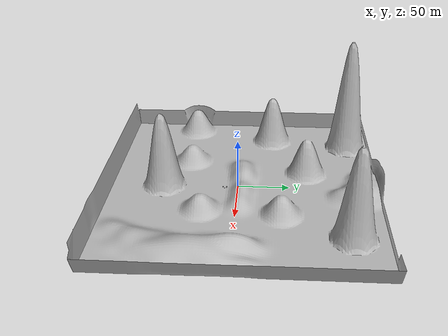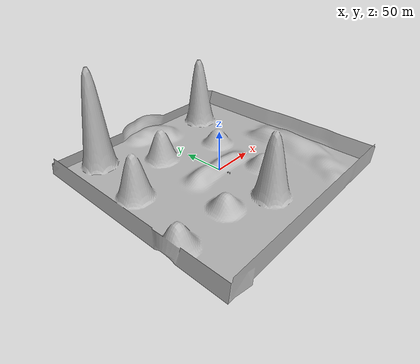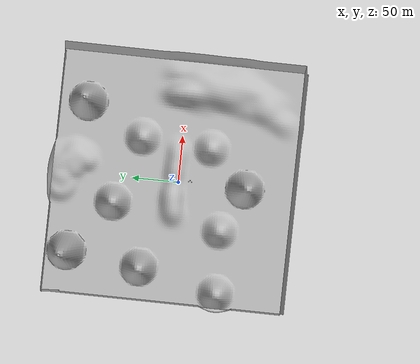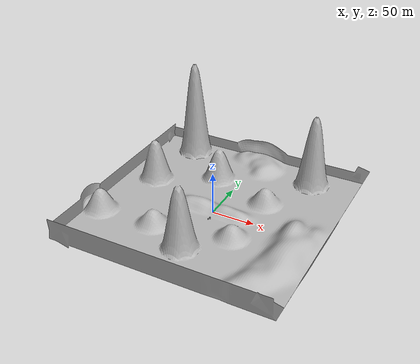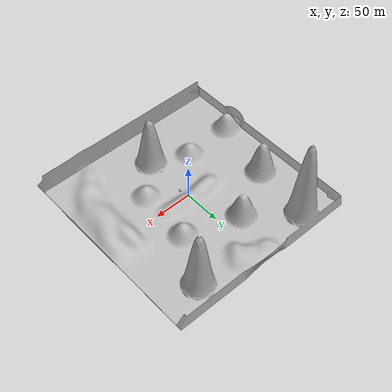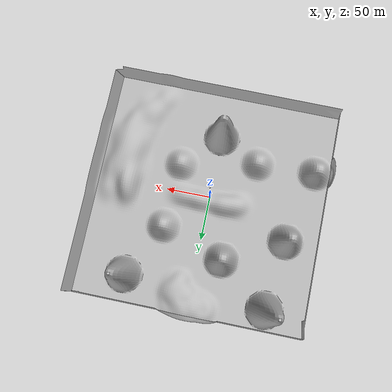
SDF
<sdf version='1.10'>
  <world name='empty'>
    <physics name='1ms' type='ignored'>
      <max_step_size>0.001</max_step_size>
      <real_time_factor>1</real_time_factor>
      <real_time_update_rate>1000</real_time_update_rate>
    </physics>
    <plugin name='gz::sim::systems::Physics' filename='gz-sim-physics-system'/>
    <plugin name='gz::sim::systems::UserCommands' filename='gz-sim-user-commands-system'/>
    <plugin name='gz::sim::systems::SceneBroadcaster' filename='gz-sim-scene-broadcaster-system'/>
    <scene>
      <grid>false</grid>
      <ambient>0.400000006 0.400000006 0.400000006 1</ambient>
      <background>0.699999988 0.699999988 0.699999988 1</background>
      <shadows>true</shadows>
    </scene>
    <gravity>0 0 -9.8000000000000007</gravity>
    <magnetic_field>5.5644999999999998e-06 2.2875799999999999e-05 -4.2388400000000002e-05</magnetic_field>
    <atmosphere type='adiabatic'/>
    <model name='WorldEnvirement'>
      <static>true</static>
      <pose>0 0 0 0 0 0</pose>
      <link name='link'>
        <collision name='collision'>
          <geometry>
            <mesh>
              <scale>20 20 20</scale>
              <uri>file:///home/ihackerubuntu/ProjectFiles/Practice/Practice_ROS2/ros2_ws_2/install/robot_depth_camera_sensor/share/robot_depth_camera_sensor/worlds/wld.dae</uri>
            </mesh>
          </geometry>
        </collision>
        <visual name='visual'>
          <geometry>
            <mesh>
              <scale>20 20 20</scale>
              <uri>file:///home/ihackerubuntu/ProjectFiles/Practice/Practice_ROS2/ros2_ws_2/install/robot_depth_camera_sensor/share/robot_depth_camera_sensor/worlds/wld.dae</uri>
            </mesh>
          </geometry>
        </visual>
        <pose>0 0 0 0 0 0</pose>
        <inertial>
          <pose>0 0 0 0 0 0</pose>
          <mass>1</mass>
          <inertia>
            <ixx>1</ixx>
            <ixy>0</ixy>
            <ixz>0</ixz>
            <iyy>1</iyy>
            <iyz>0</iyz>
            <izz>1</izz>
          </inertia>
        </inertial>
        <enable_wind>false</enable_wind>
      </link>
      <self_collide>false</self_collide>
    </model>
    <model name='cone'>
      <pose>3.523984195787377 -12.687978520552617 0.50239358302454407 0.0027337470142537812 -0.0014844089289278489 4.6320194771600267e-06</pose>
      <link name='cone_link'>
        <inertial>
          <inertia>
            <ixx>0.074999999999999997</ixx>
            <ixy>0</ixy>
            <ixz>0</ixz>
            <iyy>0.074999999999999997</iyy>
            <iyz>0</iyz>
            <izz>0.074999999999999997</izz>
          </inertia>
          <mass>1</mass>
          <pose>0 0 0 0 0 0</pose>
        </inertial>
        <collision name='cone_collision'>
          <geometry>
            <cone>
              <radius>0.5</radius>
              <length>1</length>
            </cone>
          </geometry>
          <surface>
            <friction>
              <ode/>
            </friction>
            <bounce/>
            <contact/>
          </surface>
        </collision>
        <visual name='cone_visual'>
          <geometry>
            <cone>
              <radius>0.5</radius>
              <length>1</length>
            </cone>
          </geometry>
          <material>
            <ambient>0.300000012 0.300000012 0.300000012 1</ambient>
            <diffuse>0.699999988 0.699999988 0.699999988 1</diffuse>
            <specular>1 1 1 1</specular>
          </material>
        </visual>
        <pose>0 0 0 0 0 0</pose>
        <enable_wind>false</enable_wind>
      </link>
      <static>false</static>
      <self_collide>false</self_collide>
    </model>
    <model name='cylinder'>
      <pose>1.8590183844447263 -14.192175807459163 0.49999942719852736 4.0879976477950864e-09 -3.6416753622237874e-10 7.0899388040641727e-11</pose>
      <link name='cylinder_link'>
        <inertial>
          <inertia>
            <ixx>0.14580000000000001</ixx>
            <ixy>0</ixy>
            <ixz>0</ixz>
            <iyy>0.14580000000000001</iyy>
            <iyz>0</iyz>
            <izz>0.125</izz>
          </inertia>
          <mass>1</mass>
          <pose>0 0 0 0 0 0</pose>
        </inertial>
        <collision name='cylinder_collision'>
          <geometry>
            <cylinder>
              <radius>0.5</radius>
              <length>1</length>
            </cylinder>
          </geometry>
          <surface>
            <friction>
              <ode/>
            </friction>
            <bounce/>
            <contact/>
          </surface>
        </collision>
        <visual name='cylinder_visual'>
          <geometry>
            <cylinder>
              <radius>0.5</radius>
              <length>1</length>
            </cylinder>
          </geometry>
          <material>
            <ambient>0.300000012 0.300000012 0.300000012 1</ambient>
            <diffuse>0.699999988 0.699999988 0.699999988 1</diffuse>
            <specular>1 1 1 1</specular>
          </material>
        </visual>
        <pose>0 0 0 0 0 0</pose>
        <enable_wind>false</enable_wind>
      </link>
      <static>false</static>
      <self_collide>false</self_collide>
    </model>
    <model name='box'>
      <pose>2.2345223764718622 -10.983032067860053 0.53253761217783591 0.059148212327032323 -0.0014847492465890658 0.00014095047878353716</pose>
      <link name='box_link'>
        <inertial>
          <inertia>
            <ixx>0.16666</ixx>
            <ixy>0</ixy>
            <ixz>0</ixz>
            <iyy>0.16666</iyy>
            <iyz>0</iyz>
            <izz>0.16666</izz>
          </inertia>
          <mass>1</mass>
          <pose>0 0 0 0 0 0</pose>
        </inertial>
        <collision name='box_collision'>
          <geometry>
            <box>
              <size>1 1 1</size>
            </box>
          </geometry>
          <surface>
            <friction>
              <ode/>
            </friction>
            <bounce/>
            <contact/>
          </surface>
        </collision>
        <visual name='box_visual'>
          <geometry>
            <box>
              <size>1 1 1</size>
            </box>
          </geometry>
          <material>
            <ambient>0.300000012 0.300000012 0.300000012 1</ambient>
            <diffuse>0.699999988 0.699999988 0.699999988 1</diffuse>
            <specular>1 1 1 1</specular>
          </material>
        </visual>
        <pose>0 0 0 0 0 0</pose>
        <enable_wind>false</enable_wind>
      </link>
      <static>false</static>
      <self_collide>false</self_collide>
    </model>
    <light name='sun' type='directional'>
      <pose>0 0 100 0 0 0</pose>
      <cast_shadows>true</cast_shadows>
      <intensity>1</intensity>
      <direction>0 1 1</direction>
      <diffuse>0.800000012 0.800000012 0.800000012 1</diffuse>
      <specular>0.100001 0.100001 0.100001 1</specular>
      <attenuation>
        <range>1000</range>
        <linear>1</linear>
        <constant>0.90000000000000002</constant>
        <quadratic>0.001</quadratic>
      </attenuation>
      <spot>
        <inner_angle>0</inner_angle>
        <outer_angle>0</outer_angle>
        <falloff>0</falloff>
      </spot>
    </light>
  </world>
</sdf>
